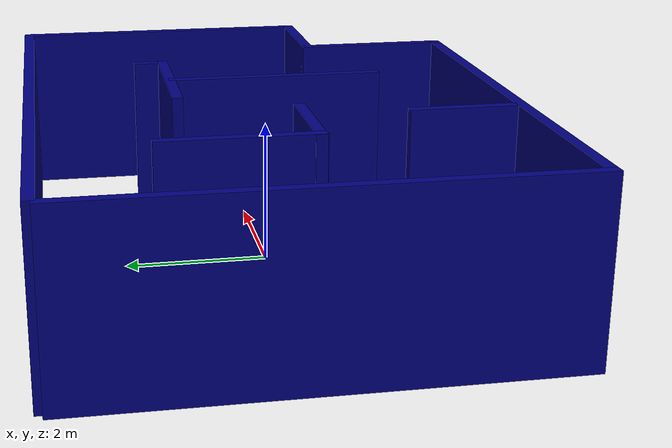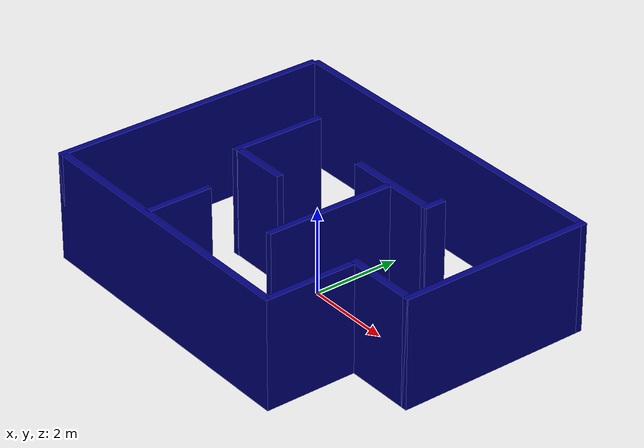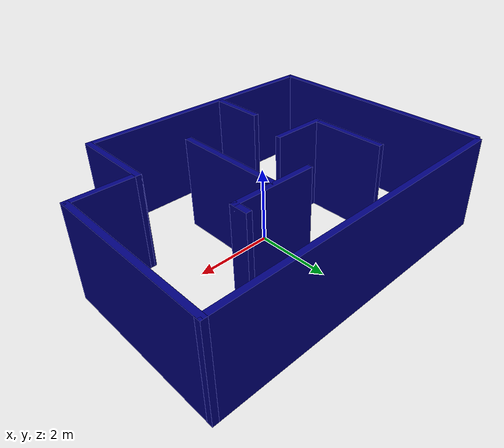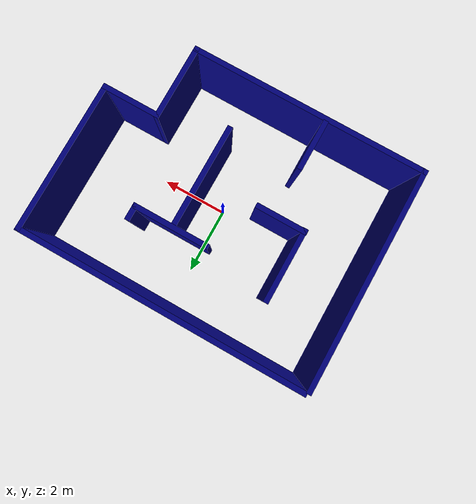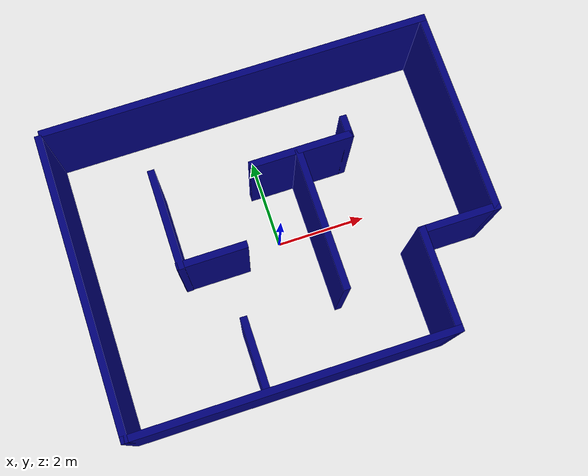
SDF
<?xml version='1.0'?>
<sdf version='1.6'>
  <model name='Maze_target'>
    <link name='Wall_0'>
      <pose frame=''>-4.225 -0.05 0 0 0 -1.5708</pose>
      <self_collide>0</self_collide>
      <enable_wind>0</enable_wind>
      <kinematic>0</kinematic>
      <visual name='Wall_0_Visual'>
        <pose frame=''>0 0 1.25 0 -0 0</pose>
        <geometry>
          <box>
            <size>6.5 0.15 2.5</size>
          </box>
        </geometry>
        <material>
          <script>
            <uri>file://media/materials/scripts/gazebo.material</uri>
            <name>Gazebo/Grey</name>
          </script>
          <ambient>0 0 0.498039 1</ambient>
        </material>
        <meta>
          <layer>0</layer>
        </meta>
        <transparency>0</transparency>
        <cast_shadows>1</cast_shadows>
      </visual>
      <collision name='Wall_0_Collision'>
        <laser_retro>0</laser_retro>
        <max_contacts>10</max_contacts>
        <pose frame=''>0 0 1.25 0 -0 0</pose>
        <geometry>
          <box>
            <size>6.5 0.15 2.5</size>
          </box>
        </geometry>
        <surface>
          <friction>
            <ode>
              <mu>1</mu>
              <mu2>1</mu2>
              <fdir1>0 0 0</fdir1>
              <slip1>0</slip1>
              <slip2>0</slip2>
            </ode>
            <torsional>
              <coefficient>1</coefficient>
              <patch_radius>0</patch_radius>
              <surface_radius>0</surface_radius>
              <use_patch_radius>1</use_patch_radius>
              <ode>
                <slip>0</slip>
              </ode>
            </torsional>
          </friction>
          <bounce>
            <restitution_coefficient>0</restitution_coefficient>
            <threshold>1e+06</threshold>
          </bounce>
          <contact>
            <collide_without_contact>0</collide_without_contact>
            <collide_without_contact_bitmask>1</collide_without_contact_bitmask>
            <collide_bitmask>1</collide_bitmask>
            <ode>
              <soft_cfm>0</soft_cfm>
              <soft_erp>0.2</soft_erp>
              <kp>1e+13</kp>
              <kd>1</kd>
              <max_vel>0.01</max_vel>
              <min_depth>0</min_depth>
            </ode>
            <bullet>
              <split_impulse>1</split_impulse>
              <split_impulse_penetration_threshold>-0.01</split_impulse_penetration_threshold>
              <soft_cfm>0</soft_cfm>
              <soft_erp>0.2</soft_erp>
              <kp>1e+13</kp>
              <kd>1</kd>
            </bullet>
          </contact>
        </surface>
      </collision>
    </link>
    <link name='Wall_11'>
      <pose frame=''>0.84634 1.24669 0 0 -0 0</pose>
      <self_collide>0</self_collide>
      <enable_wind>0</enable_wind>
      <kinematic>0</kinematic>
      <visual name='Wall_11_Visual'>
        <pose frame=''>0 0 1.25 0 -0 0</pose>
        <geometry>
          <box>
            <size>2.25 0.15 2.5</size>
          </box>
        </geometry>
        <material>
          <script>
            <uri>file://media/materials/scripts/gazebo.material</uri>
            <name>Gazebo/Grey</name>
          </script>
          <ambient>0 0 0.498039 1</ambient>
        </material>
        <meta>
          <layer>0</layer>
        </meta>
        <transparency>0</transparency>
        <cast_shadows>1</cast_shadows>
      </visual>
      <collision name='Wall_11_Collision'>
        <laser_retro>0</laser_retro>
        <max_contacts>10</max_contacts>
        <pose frame=''>0 0 1.25 0 -0 0</pose>
        <geometry>
          <box>
            <size>2.25 0.15 2.5</size>
          </box>
        </geometry>
        <surface>
          <friction>
            <ode>
              <mu>1</mu>
              <mu2>1</mu2>
              <fdir1>0 0 0</fdir1>
              <slip1>0</slip1>
              <slip2>0</slip2>
            </ode>
            <torsional>
              <coefficient>1</coefficient>
              <patch_radius>0</patch_radius>
              <surface_radius>0</surface_radius>
              <use_patch_radius>1</use_patch_radius>
              <ode>
                <slip>0</slip>
              </ode>
            </torsional>
          </friction>
          <bounce>
            <restitution_coefficient>0</restitution_coefficient>
            <threshold>1e+06</threshold>
          </bounce>
          <contact>
            <collide_without_contact>0</collide_without_contact>
            <collide_without_contact_bitmask>1</collide_without_contact_bitmask>
            <collide_bitmask>1</collide_bitmask>
            <ode>
              <soft_cfm>0</soft_cfm>
              <soft_erp>0.2</soft_erp>
              <kp>1e+13</kp>
              <kd>1</kd>
              <max_vel>0.01</max_vel>
              <min_depth>0</min_depth>
            </ode>
            <bullet>
              <split_impulse>1</split_impulse>
              <split_impulse_penetration_threshold>-0.01</split_impulse_penetration_threshold>
              <soft_cfm>0</soft_cfm>
              <soft_erp>0.2</soft_erp>
              <kp>1e+13</kp>
              <kd>1</kd>
            </bullet>
          </contact>
        </surface>
      </collision>
    </link>
    <link name='Wall_12'>
      <pose frame=''>1.89634 1.42169 0 0 -0 1.5708</pose>
      <self_collide>0</self_collide>
      <enable_wind>0</enable_wind>
      <kinematic>0</kinematic>
      <visual name='Wall_12_Visual'>
        <pose frame=''>0 0 1.25 0 -0 0</pose>
        <geometry>
          <box>
            <size>0.5 0.15 2.5</size>
          </box>
        </geometry>
        <material>
          <script>
            <uri>file://media/materials/scripts/gazebo.material</uri>
            <name>Gazebo/Grey</name>
          </script>
          <ambient>0 0 0.498039 1</ambient>
        </material>
        <meta>
          <layer>0</layer>
        </meta>
        <transparency>0</transparency>
        <cast_shadows>1</cast_shadows>
      </visual>
      <collision name='Wall_12_Collision'>
        <laser_retro>0</laser_retro>
        <max_contacts>10</max_contacts>
        <pose frame=''>0 0 1.25 0 -0 0</pose>
        <geometry>
          <box>
            <size>0.5 0.15 2.5</size>
          </box>
        </geometry>
        <surface>
          <friction>
            <ode>
              <mu>1</mu>
              <mu2>1</mu2>
              <fdir1>0 0 0</fdir1>
              <slip1>0</slip1>
              <slip2>0</slip2>
            </ode>
            <torsional>
              <coefficient>1</coefficient>
              <patch_radius>0</patch_radius>
              <surface_radius>0</surface_radius>
              <use_patch_radius>1</use_patch_radius>
              <ode>
                <slip>0</slip>
              </ode>
            </torsional>
          </friction>
          <bounce>
            <restitution_coefficient>0</restitution_coefficient>
            <threshold>1e+06</threshold>
          </bounce>
          <contact>
            <collide_without_contact>0</collide_without_contact>
            <collide_without_contact_bitmask>1</collide_without_contact_bitmask>
            <collide_bitmask>1</collide_bitmask>
            <ode>
              <soft_cfm>0</soft_cfm>
              <soft_erp>0.2</soft_erp>
              <kp>1e+13</kp>
              <kd>1</kd>
              <max_vel>0.01</max_vel>
              <min_depth>0</min_depth>
            </ode>
            <bullet>
              <split_impulse>1</split_impulse>
              <split_impulse_penetration_threshold>-0.01</split_impulse_penetration_threshold>
              <soft_cfm>0</soft_cfm>
              <soft_erp>0.2</soft_erp>
              <kp>1e+13</kp>
              <kd>1</kd>
            </bullet>
          </contact>
        </surface>
      </collision>
    </link>
    <link name='Wall_15'>
      <pose frame=''>0.784909 -0.272896 0 0 0 -1.5708</pose>
      <self_collide>0</self_collide>
      <enable_wind>0</enable_wind>
      <kinematic>0</kinematic>
      <inertial>
        <inertia>
          <ixx>0</ixx>
          <ixy>0</ixy>
          <ixz>0</ixz>
          <iyy>0</iyy>
          <iyz>0</iyz>
          <izz>0</izz>
        </inertia>
        <mass>0</mass>
        <pose frame=''>0 0 0 0 -0 0</pose>
      </inertial>
      <visual name='Wall_15_Visual'>
        <pose frame=''>0 0 1.25 0 -0 0</pose>
        <geometry>
          <box>
            <size>3.07303 0.15 2.5</size>
          </box>
        </geometry>
        <material>
          <script>
            <uri>file://media/materials/scripts/gazebo.material</uri>
            <name>Gazebo/Grey</name>
          </script>
          <ambient>0 0 0.498039 1</ambient>
        </material>
        <meta>
          <layer>0</layer>
        </meta>
        <transparency>0</transparency>
        <cast_shadows>1</cast_shadows>
      </visual>
      <collision name='Wall_15_Collision'>
        <laser_retro>0</laser_retro>
        <max_contacts>10</max_contacts>
        <pose frame=''>0 0 1.25 0 -0 0</pose>
        <geometry>
          <box>
            <size>3.07303 0.15 2.5</size>
          </box>
        </geometry>
        <surface>
          <friction>
            <ode>
              <mu>1</mu>
              <mu2>1</mu2>
              <fdir1>0 0 0</fdir1>
              <slip1>0</slip1>
              <slip2>0</slip2>
            </ode>
            <torsional>
              <coefficient>1</coefficient>
              <patch_radius>0</patch_radius>
              <surface_radius>0</surface_radius>
              <use_patch_radius>1</use_patch_radius>
              <ode>
                <slip>0</slip>
              </ode>
            </torsional>
          </friction>
          <bounce>
            <restitution_coefficient>0</restitution_coefficient>
            <threshold>1e+06</threshold>
          </bounce>
          <contact>
            <collide_without_contact>0</collide_without_contact>
            <collide_without_contact_bitmask>1</collide_without_contact_bitmask>
            <collide_bitmask>1</collide_bitmask>
            <ode>
              <soft_cfm>0</soft_cfm>
              <soft_erp>0.2</soft_erp>
              <kp>1e+13</kp>
              <kd>1</kd>
              <max_vel>0.01</max_vel>
              <min_depth>0</min_depth>
            </ode>
            <bullet>
              <split_impulse>1</split_impulse>
              <split_impulse_penetration_threshold>-0.01</split_impulse_penetration_threshold>
              <soft_cfm>0</soft_cfm>
              <soft_erp>0.2</soft_erp>
              <kp>1e+13</kp>
              <kd>1</kd>
            </bullet>
          </contact>
        </surface>
      </collision>
    </link>
    <link name='Wall_17'>
      <pose frame=''>-1.34123 -2.43146 0 0 -0 1.5708</pose>
      <self_collide>0</self_collide>
      <enable_wind>0</enable_wind>
      <kinematic>0</kinematic>
      <visual name='Wall_17_Visual'>
        <pose frame=''>0 0 1.25 0 -0 0</pose>
        <geometry>
          <box>
            <size>1.5 0.15 2.5</size>
          </box>
        </geometry>
        <material>
          <script>
            <uri>file://media/materials/scripts/gazebo.material</uri>
            <name>Gazebo/Grey</name>
          </script>
          <ambient>0 0 0.498039 1</ambient>
        </material>
        <meta>
          <layer>0</layer>
        </meta>
        <transparency>0</transparency>
        <cast_shadows>1</cast_shadows>
      </visual>
      <collision name='Wall_17_Collision'>
        <laser_retro>0</laser_retro>
        <max_contacts>10</max_contacts>
        <pose frame=''>0 0 1.25 0 -0 0</pose>
        <geometry>
          <box>
            <size>1.5 0.15 2.5</size>
          </box>
        </geometry>
        <surface>
          <friction>
            <ode>
              <mu>1</mu>
              <mu2>1</mu2>
              <fdir1>0 0 0</fdir1>
              <slip1>0</slip1>
              <slip2>0</slip2>
            </ode>
            <torsional>
              <coefficient>1</coefficient>
              <patch_radius>0</patch_radius>
              <surface_radius>0</surface_radius>
              <use_patch_radius>1</use_patch_radius>
              <ode>
                <slip>0</slip>
              </ode>
            </torsional>
          </friction>
          <bounce>
            <restitution_coefficient>0</restitution_coefficient>
            <threshold>1e+06</threshold>
          </bounce>
          <contact>
            <collide_without_contact>0</collide_without_contact>
            <collide_without_contact_bitmask>1</collide_without_contact_bitmask>
            <collide_bitmask>1</collide_bitmask>
            <ode>
              <soft_cfm>0</soft_cfm>
              <soft_erp>0.2</soft_erp>
              <kp>1e+13</kp>
              <kd>1</kd>
              <max_vel>0.01</max_vel>
              <min_depth>0</min_depth>
            </ode>
            <bullet>
              <split_impulse>1</split_impulse>
              <split_impulse_penetration_threshold>-0.01</split_impulse_penetration_threshold>
              <soft_cfm>0</soft_cfm>
              <soft_erp>0.2</soft_erp>
              <kp>1e+13</kp>
              <kd>1</kd>
            </bullet>
          </contact>
        </surface>
      </collision>
    </link>
    <link name='Wall_2'>
      <pose frame=''>-0.8 -3.225 0 0 -0 0</pose>
      <self_collide>0</self_collide>
      <enable_wind>0</enable_wind>
      <kinematic>0</kinematic>
      <visual name='Wall_2_Visual'>
        <pose frame=''>0 0 1.25 0 -0 0</pose>
        <geometry>
          <box>
            <size>7 0.15 2.5</size>
          </box>
        </geometry>
        <material>
          <script>
            <uri>file://media/materials/scripts/gazebo.material</uri>
            <name>Gazebo/Grey</name>
          </script>
          <ambient>0 0 0.498039 1</ambient>
        </material>
        <meta>
          <layer>0</layer>
        </meta>
        <transparency>0</transparency>
        <cast_shadows>1</cast_shadows>
      </visual>
      <collision name='Wall_2_Collision'>
        <laser_retro>0</laser_retro>
        <max_contacts>10</max_contacts>
        <pose frame=''>0 0 1.25 0 -0 0</pose>
        <geometry>
          <box>
            <size>7 0.15 2.5</size>
          </box>
        </geometry>
        <surface>
          <friction>
            <ode>
              <mu>1</mu>
              <mu2>1</mu2>
              <fdir1>0 0 0</fdir1>
              <slip1>0</slip1>
              <slip2>0</slip2>
            </ode>
            <torsional>
              <coefficient>1</coefficient>
              <patch_radius>0</patch_radius>
              <surface_radius>0</surface_radius>
              <use_patch_radius>1</use_patch_radius>
              <ode>
                <slip>0</slip>
              </ode>
            </torsional>
          </friction>
          <bounce>
            <restitution_coefficient>0</restitution_coefficient>
            <threshold>1e+06</threshold>
          </bounce>
          <contact>
            <collide_without_contact>0</collide_without_contact>
            <collide_without_contact_bitmask>1</collide_without_contact_bitmask>
            <collide_bitmask>1</collide_bitmask>
            <ode>
              <soft_cfm>0</soft_cfm>
              <soft_erp>0.2</soft_erp>
              <kp>1e+13</kp>
              <kd>1</kd>
              <max_vel>0.01</max_vel>
              <min_depth>0</min_depth>
            </ode>
            <bullet>
              <split_impulse>1</split_impulse>
              <split_impulse_penetration_threshold>-0.01</split_impulse_penetration_threshold>
              <soft_cfm>0</soft_cfm>
              <soft_erp>0.2</soft_erp>
              <kp>1e+13</kp>
              <kd>1</kd>
            </bullet>
          </contact>
        </surface>
      </collision>
    </link>
    <link name='Wall_3'>
      <pose frame=''>2.625 -2.175 0 0 -0 1.5708</pose>
      <self_collide>0</self_collide>
      <enable_wind>0</enable_wind>
      <kinematic>0</kinematic>
      <visual name='Wall_3_Visual'>
        <pose frame=''>0 0 1.25 0 -0 0</pose>
        <geometry>
          <box>
            <size>2.25 0.15 2.5</size>
          </box>
        </geometry>
        <material>
          <script>
            <uri>file://media/materials/scripts/gazebo.material</uri>
            <name>Gazebo/Grey</name>
          </script>
          <ambient>0 0 0.498039 1</ambient>
        </material>
        <meta>
          <layer>0</layer>
        </meta>
        <transparency>0</transparency>
        <cast_shadows>1</cast_shadows>
      </visual>
      <collision name='Wall_3_Collision'>
        <laser_retro>0</laser_retro>
        <max_contacts>10</max_contacts>
        <pose frame=''>0 0 1.25 0 -0 0</pose>
        <geometry>
          <box>
            <size>2.25 0.15 2.5</size>
          </box>
        </geometry>
        <surface>
          <friction>
            <ode>
              <mu>1</mu>
              <mu2>1</mu2>
              <fdir1>0 0 0</fdir1>
              <slip1>0</slip1>
              <slip2>0</slip2>
            </ode>
            <torsional>
              <coefficient>1</coefficient>
              <patch_radius>0</patch_radius>
              <surface_radius>0</surface_radius>
              <use_patch_radius>1</use_patch_radius>
              <ode>
                <slip>0</slip>
              </ode>
            </torsional>
          </friction>
          <bounce>
            <restitution_coefficient>0</restitution_coefficient>
            <threshold>1e+06</threshold>
          </bounce>
          <contact>
            <collide_without_contact>0</collide_without_contact>
            <collide_without_contact_bitmask>1</collide_without_contact_bitmask>
            <collide_bitmask>1</collide_bitmask>
            <ode>
              <soft_cfm>0</soft_cfm>
              <soft_erp>0.2</soft_erp>
              <kp>1e+13</kp>
              <kd>1</kd>
              <max_vel>0.01</max_vel>
              <min_depth>0</min_depth>
            </ode>
            <bullet>
              <split_impulse>1</split_impulse>
              <split_impulse_penetration_threshold>-0.01</split_impulse_penetration_threshold>
              <soft_cfm>0</soft_cfm>
              <soft_erp>0.2</soft_erp>
              <kp>1e+13</kp>
              <kd>1</kd>
            </bullet>
          </contact>
        </surface>
      </collision>
    </link>
    <link name='Wall_4'>
      <pose frame=''>3.425 -1.125 0 0 -0 0</pose>
      <self_collide>0</self_collide>
      <enable_wind>0</enable_wind>
      <kinematic>0</kinematic>
      <visual name='Wall_4_Visual'>
        <pose frame=''>0 0 1.25 0 -0 0</pose>
        <geometry>
          <box>
            <size>1.75 0.15 2.5</size>
          </box>
        </geometry>
        <material>
          <script>
            <uri>file://media/materials/scripts/gazebo.material</uri>
            <name>Gazebo/Grey</name>
          </script>
          <ambient>0 0 0.498039 1</ambient>
        </material>
        <meta>
          <layer>0</layer>
        </meta>
        <transparency>0</transparency>
        <cast_shadows>1</cast_shadows>
      </visual>
      <collision name='Wall_4_Collision'>
        <laser_retro>0</laser_retro>
        <max_contacts>10</max_contacts>
        <pose frame=''>0 0 1.25 0 -0 0</pose>
        <geometry>
          <box>
            <size>1.75 0.15 2.5</size>
          </box>
        </geometry>
        <surface>
          <friction>
            <ode>
              <mu>1</mu>
              <mu2>1</mu2>
              <fdir1>0 0 0</fdir1>
              <slip1>0</slip1>
              <slip2>0</slip2>
            </ode>
            <torsional>
              <coefficient>1</coefficient>
              <patch_radius>0</patch_radius>
              <surface_radius>0</surface_radius>
              <use_patch_radius>1</use_patch_radius>
              <ode>
                <slip>0</slip>
              </ode>
            </torsional>
          </friction>
          <bounce>
            <restitution_coefficient>0</restitution_coefficient>
            <threshold>1e+06</threshold>
          </bounce>
          <contact>
            <collide_without_contact>0</collide_without_contact>
            <collide_without_contact_bitmask>1</collide_without_contact_bitmask>
            <collide_bitmask>1</collide_bitmask>
            <ode>
              <soft_cfm>0</soft_cfm>
              <soft_erp>0.2</soft_erp>
              <kp>1e+13</kp>
              <kd>1</kd>
              <max_vel>0.01</max_vel>
              <min_depth>0</min_depth>
            </ode>
            <bullet>
              <split_impulse>1</split_impulse>
              <split_impulse_penetration_threshold>-0.01</split_impulse_penetration_threshold>
              <soft_cfm>0</soft_cfm>
              <soft_erp>0.2</soft_erp>
              <kp>1e+13</kp>
              <kd>1</kd>
            </bullet>
          </contact>
        </surface>
      </collision>
    </link>
    <link name='Wall_5'>
      <pose frame=''>4.225 1.05 0 0 -0 1.5708</pose>
      <self_collide>0</self_collide>
      <enable_wind>0</enable_wind>
      <kinematic>0</kinematic>
      <visual name='Wall_5_Visual'>
        <pose frame=''>0 0 1.25 0 -0 0</pose>
        <geometry>
          <box>
            <size>4.5 0.15 2.5</size>
          </box>
        </geometry>
        <material>
          <script>
            <uri>file://media/materials/scripts/gazebo.material</uri>
            <name>Gazebo/Grey</name>
          </script>
          <ambient>0 0 0.498039 1</ambient>
        </material>
        <meta>
          <layer>0</layer>
        </meta>
        <transparency>0</transparency>
        <cast_shadows>1</cast_shadows>
      </visual>
      <collision name='Wall_5_Collision'>
        <laser_retro>0</laser_retro>
        <max_contacts>10</max_contacts>
        <pose frame=''>0 0 1.25 0 -0 0</pose>
        <geometry>
          <box>
            <size>4.5 0.15 2.5</size>
          </box>
        </geometry>
        <surface>
          <friction>
            <ode>
              <mu>1</mu>
              <mu2>1</mu2>
              <fdir1>0 0 0</fdir1>
              <slip1>0</slip1>
              <slip2>0</slip2>
            </ode>
            <torsional>
              <coefficient>1</coefficient>
              <patch_radius>0</patch_radius>
              <surface_radius>0</surface_radius>
              <use_patch_radius>1</use_patch_radius>
              <ode>
                <slip>0</slip>
              </ode>
            </torsional>
          </friction>
          <bounce>
            <restitution_coefficient>0</restitution_coefficient>
            <threshold>1e+06</threshold>
          </bounce>
          <contact>
            <collide_without_contact>0</collide_without_contact>
            <collide_without_contact_bitmask>1</collide_without_contact_bitmask>
            <collide_bitmask>1</collide_bitmask>
            <ode>
              <soft_cfm>0</soft_cfm>
              <soft_erp>0.2</soft_erp>
              <kp>1e+13</kp>
              <kd>1</kd>
              <max_vel>0.01</max_vel>
              <min_depth>0</min_depth>
            </ode>
            <bullet>
              <split_impulse>1</split_impulse>
              <split_impulse_penetration_threshold>-0.01</split_impulse_penetration_threshold>
              <soft_cfm>0</soft_cfm>
              <soft_erp>0.2</soft_erp>
              <kp>1e+13</kp>
              <kd>1</kd>
            </bullet>
          </contact>
        </surface>
      </collision>
    </link>
    <link name='Wall_6'>
      <pose frame=''>0.05 3.225 0 0 -0 3.14159</pose>
      <self_collide>0</self_collide>
      <enable_wind>0</enable_wind>
      <kinematic>0</kinematic>
      <visual name='Wall_6_Visual'>
        <pose frame=''>0 0 1.25 0 -0 0</pose>
        <geometry>
          <box>
            <size>8.5 0.15 2.5</size>
          </box>
        </geometry>
        <material>
          <script>
            <uri>file://media/materials/scripts/gazebo.material</uri>
            <name>Gazebo/Grey</name>
          </script>
          <ambient>0 0 0.498039 1</ambient>
        </material>
        <meta>
          <layer>0</layer>
        </meta>
        <transparency>0</transparency>
        <cast_shadows>1</cast_shadows>
      </visual>
      <collision name='Wall_6_Collision'>
        <laser_retro>0</laser_retro>
        <max_contacts>10</max_contacts>
        <pose frame=''>0 0 1.25 0 -0 0</pose>
        <geometry>
          <box>
            <size>8.5 0.15 2.5</size>
          </box>
        </geometry>
        <surface>
          <friction>
            <ode>
              <mu>1</mu>
              <mu2>1</mu2>
              <fdir1>0 0 0</fdir1>
              <slip1>0</slip1>
              <slip2>0</slip2>
            </ode>
            <torsional>
              <coefficient>1</coefficient>
              <patch_radius>0</patch_radius>
              <surface_radius>0</surface_radius>
              <use_patch_radius>1</use_patch_radius>
              <ode>
                <slip>0</slip>
              </ode>
            </torsional>
          </friction>
          <bounce>
            <restitution_coefficient>0</restitution_coefficient>
            <threshold>1e+06</threshold>
          </bounce>
          <contact>
            <collide_without_contact>0</collide_without_contact>
            <collide_without_contact_bitmask>1</collide_without_contact_bitmask>
            <collide_bitmask>1</collide_bitmask>
            <ode>
              <soft_cfm>0</soft_cfm>
              <soft_erp>0.2</soft_erp>
              <kp>1e+13</kp>
              <kd>1</kd>
              <max_vel>0.01</max_vel>
              <min_depth>0</min_depth>
            </ode>
            <bullet>
              <split_impulse>1</split_impulse>
              <split_impulse_penetration_threshold>-0.01</split_impulse_penetration_threshold>
              <soft_cfm>0</soft_cfm>
              <soft_erp>0.2</soft_erp>
              <kp>1e+13</kp>
              <kd>1</kd>
            </bullet>
          </contact>
        </surface>
      </collision>
    </link>
    <link name='Wall_8'>
      <pose frame=''>-2.22473 0.684501 0 0 0 -1.5708</pose>
      <self_collide>0</self_collide>
      <enable_wind>0</enable_wind>
      <kinematic>0</kinematic>
      <visual name='Wall_8_Visual'>
        <pose frame=''>0 0 1.25 0 -0 0</pose>
        <geometry>
          <box>
            <size>2.164 0.15 2.5</size>
          </box>
        </geometry>
        <material>
          <script>
            <uri>file://media/materials/scripts/gazebo.material</uri>
            <name>Gazebo/Grey</name>
          </script>
          <ambient>0 0 0.498039 1</ambient>
        </material>
        <meta>
          <layer>0</layer>
        </meta>
        <transparency>0</transparency>
        <cast_shadows>1</cast_shadows>
      </visual>
      <collision name='Wall_8_Collision'>
        <laser_retro>0</laser_retro>
        <max_contacts>10</max_contacts>
        <pose frame=''>0 0 1.25 0 -0 0</pose>
        <geometry>
          <box>
            <size>2.164 0.15 2.5</size>
          </box>
        </geometry>
        <surface>
          <friction>
            <ode>
              <mu>1</mu>
              <mu2>1</mu2>
              <fdir1>0 0 0</fdir1>
              <slip1>0</slip1>
              <slip2>0</slip2>
            </ode>
            <torsional>
              <coefficient>1</coefficient>
              <patch_radius>0</patch_radius>
              <surface_radius>0</surface_radius>
              <use_patch_radius>1</use_patch_radius>
              <ode>
                <slip>0</slip>
              </ode>
            </torsional>
          </friction>
          <bounce>
            <restitution_coefficient>0</restitution_coefficient>
            <threshold>1e+06</threshold>
          </bounce>
          <contact>
            <collide_without_contact>0</collide_without_contact>
            <collide_without_contact_bitmask>1</collide_without_contact_bitmask>
            <collide_bitmask>1</collide_bitmask>
            <ode>
              <soft_cfm>0</soft_cfm>
              <soft_erp>0.2</soft_erp>
              <kp>1e+13</kp>
              <kd>1</kd>
              <max_vel>0.01</max_vel>
              <min_depth>0</min_depth>
            </ode>
            <bullet>
              <split_impulse>1</split_impulse>
              <split_impulse_penetration_threshold>-0.01</split_impulse_penetration_threshold>
              <soft_cfm>0</soft_cfm>
              <soft_erp>0.2</soft_erp>
              <kp>1e+13</kp>
              <kd>1</kd>
            </bullet>
          </contact>
        </surface>
      </collision>
    </link>
    <link name='Wall_9'>
      <pose frame=''>-1.56123 -0.310999 0 0 -0 0</pose>
      <self_collide>0</self_collide>
      <enable_wind>0</enable_wind>
      <kinematic>0</kinematic>
      <visual name='Wall_9_Visual'>
        <pose frame=''>0 0 1.25 0 -0 0</pose>
        <geometry>
          <box>
            <size>1.5 0.15 2.5</size>
          </box>
        </geometry>
        <material>
          <script>
            <uri>file://media/materials/scripts/gazebo.material</uri>
            <name>Gazebo/Grey</name>
          </script>
          <ambient>0 0 0.498039 1</ambient>
        </material>
        <meta>
          <layer>0</layer>
        </meta>
        <transparency>0</transparency>
        <cast_shadows>1</cast_shadows>
      </visual>
      <collision name='Wall_9_Collision'>
        <laser_retro>0</laser_retro>
        <max_contacts>10</max_contacts>
        <pose frame=''>0 0 1.25 0 -0 0</pose>
        <geometry>
          <box>
            <size>1.5 0.15 2.5</size>
          </box>
        </geometry>
        <surface>
          <friction>
            <ode>
              <mu>1</mu>
              <mu2>1</mu2>
              <fdir1>0 0 0</fdir1>
              <slip1>0</slip1>
              <slip2>0</slip2>
            </ode>
            <torsional>
              <coefficient>1</coefficient>
              <patch_radius>0</patch_radius>
              <surface_radius>0</surface_radius>
              <use_patch_radius>1</use_patch_radius>
              <ode>
                <slip>0</slip>
              </ode>
            </torsional>
          </friction>
          <bounce>
            <restitution_coefficient>0</restitution_coefficient>
            <threshold>1e+06</threshold>
          </bounce>
          <contact>
            <collide_without_contact>0</collide_without_contact>
            <collide_without_contact_bitmask>1</collide_without_contact_bitmask>
            <collide_bitmask>1</collide_bitmask>
            <ode>
              <soft_cfm>0</soft_cfm>
              <soft_erp>0.2</soft_erp>
              <kp>1e+13</kp>
              <kd>1</kd>
              <max_vel>0.01</max_vel>
              <min_depth>0</min_depth>
            </ode>
            <bullet>
              <split_impulse>1</split_impulse>
              <split_impulse_penetration_threshold>-0.01</split_impulse_penetration_threshold>
              <soft_cfm>0</soft_cfm>
              <soft_erp>0.2</soft_erp>
              <kp>1e+13</kp>
              <kd>1</kd>
            </bullet>
          </contact>
        </surface>
      </collision>
    </link>
    <static>1</static>
    <allow_auto_disable>1</allow_auto_disable>
  </model>
</sdf>
